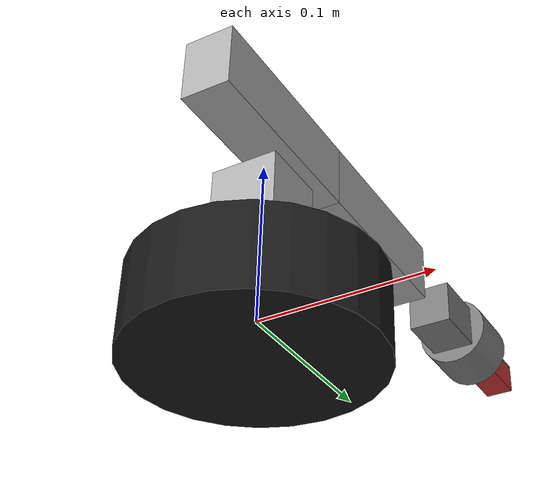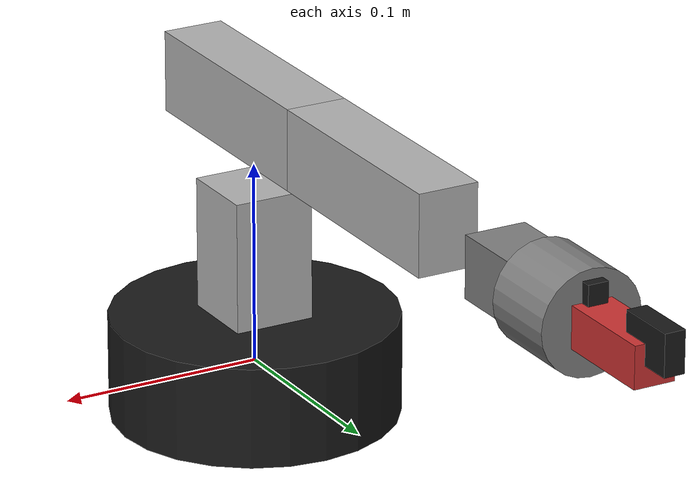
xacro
<?xml version="1.0"?>
<robot name="phantomx_reactor" xmlns:xacro="http://ros.org/wiki/xacro">

  <!-- Materials -->
  <material name="black">
    <color rgba="0.1 0.1 0.1 1.0"/>
  </material>
  <material name="gray">
    <color rgba="0.5 0.5 0.5 1.0"/>
  </material>
  <material name="silver">
    <color rgba="0.7 0.7 0.7 1.0"/>
  </material>
  <material name="red">
    <color rgba="0.8 0.2 0.2 1.0"/>
  </material>

  <!-- Base Link (fixed to world) -->
  <link name="base_link">
    <visual>
      <origin xyz="0 0 0" rpy="0 0 0"/>
      <geometry>
        <cylinder radius="0.07" length="0.05"/>
      </geometry>
      <material name="black"/>
    </visual>
    <collision>
      <origin xyz="0 0 0" rpy="0 0 0"/>
      <geometry>
        <cylinder radius="0.07" length="0.05"/>
      </geometry>
    </collision>
    <inertial>
      <origin xyz="0 0 0" rpy="0 0 0"/>
      <mass value="0.2"/>
      <inertia ixx="0.0005" ixy="0" ixz="0" iyy="0.0005" iyz="0" izz="0.001"/>
    </inertial>
  </link>

  <!-- Base Rotation Joint (Servo ID 1) -->
  <joint name="base_joint" type="revolute">
    <parent link="base_link"/>
    <child link="base_rot_link"/>
    <origin xyz="0 0 0.05" rpy="0 0 0"/>
    <axis xyz="0 0 1"/>
    <limit lower="-3.14" upper="3.14" effort="1.0" velocity="6.0"/>
    <dynamics damping="0.1" friction="0.1"/>
  </joint>

  <link name="base_rot_link">
    <visual>
      <origin xyz="0 0 0" rpy="0 0 0"/>
      <geometry>
        <box size="0.04 0.04 0.08"/>
      </geometry>
      <material name="silver"/>
    </visual>
    <collision>
      <origin xyz="0 0 0" rpy="0 0 0"/>
      <geometry>
        <box size="0.04 0.04 0.08"/>
      </geometry>
    </collision>
    <inertial>
      <origin xyz="0 0 0.04" rpy="0 0 0"/>
      <mass value="0.15"/>
      <inertia ixx="0.0003" ixy="0" ixz="0" iyy="0.0003" iyz="0" izz="0.0002"/>
    </inertial>
  </link>

  <!-- Shoulder Pitch Joint (Servo IDs 2 & 3 - dual) -->
  <joint name="shoulder_pitch_joint" type="revolute">
    <parent link="base_rot_link"/>
    <child link="shoulder_link"/>
    <origin xyz="0 0 0.08" rpy="0 0 0"/>
    <axis xyz="0 1 0"/>
    <limit lower="-1.57" upper="1.57" effort="2.0" velocity="6.0"/>
    <dynamics damping="0.1" friction="0.1"/>
  </joint>

  <link name="shoulder_link">
    <visual>
      <origin xyz="0 0 0" rpy="0 0 0"/>
      <geometry>
        <box size="0.03 0.12 0.04"/>
      </geometry>
      <material name="silver"/>
    </visual>
    <collision>
      <origin xyz="0 0 0" rpy="0 0 0"/>
      <geometry>
        <box size="0.03 0.12 0.04"/>
      </geometry>
    </collision>
    <inertial>
      <origin xyz="0 0.06 0" rpy="0 0 0"/>
      <mass value="0.2"/>
      <inertia ixx="0.0004" ixy="0" ixz="0" iyy="0.0002" iyz="0" izz="0.0004"/>
    </inertial>
  </link>

  <!-- Elbow Pitch Joint (Servo IDs 4 & 5 - dual) -->
  <joint name="elbow_pitch_joint" type="revolute">
    <parent link="shoulder_link"/>
    <child link="elbow_link"/>
    <origin xyz="0 0.12 0" rpy="0 0 0"/>
    <axis xyz="0 1 0"/>
    <limit lower="-1.57" upper="1.57" effort="2.0" velocity="6.0"/>
    <dynamics damping="0.1" friction="0.1"/>
  </joint>

  <link name="elbow_link">
    <visual>
      <origin xyz="0 0 0" rpy="0 0 0"/>
      <geometry>
        <box size="0.03 0.12 0.04"/>
      </geometry>
      <material name="silver"/>
    </visual>
    <collision>
      <origin xyz="0 0 0" rpy="0 0 0"/>
      <geometry>
        <box size="0.03 0.12 0.04"/>
      </geometry>
    </collision>
    <inertial>
      <origin xyz="0 0.06 0" rpy="0 0 0"/>
      <mass value="0.15"/>
      <inertia ixx="0.0003" ixy="0" ixz="0" iyy="0.0002" iyz="0" izz="0.0003"/>
    </inertial>
  </link>

  <!-- Wrist Pitch Joint (Servo ID 6) -->
  <joint name="wrist_pitch_joint" type="revolute">
    <parent link="elbow_link"/>
    <child link="wrist_pitch_link"/>
    <origin xyz="0 0.12 0" rpy="0 0 0"/>
    <axis xyz="0 1 0"/>
    <limit lower="-1.57" upper="1.57" effort="1.0" velocity="6.0"/>
    <dynamics damping="0.1" friction="0.1"/>
  </joint>

  <link name="wrist_pitch_link">
    <visual>
      <origin xyz="0 0 0" rpy="0 0 0"/>
      <geometry>
        <box size="0.03 0.04 0.03"/>
      </geometry>
      <material name="gray"/>
    </visual>
    <collision>
      <origin xyz="0 0 0" rpy="0 0 0"/>
      <geometry>
        <box size="0.03 0.04 0.03"/>
      </geometry>
    </collision>
    <inertial>
      <origin xyz="0 0.02 0" rpy="0 0 0"/>
      <mass value="0.1"/>
      <inertia ixx="0.0001" ixy="0" ixz="0" iyy="0.0001" iyz="0" izz="0.0001"/>
    </inertial>
  </link>

  <!-- Wrist Roll Joint (Servo ID 7) -->
  <joint name="wrist_roll_joint" type="revolute">
    <parent link="wrist_pitch_link"/>
    <child link="wrist_roll_link"/>
    <origin xyz="0 0.04 0" rpy="${-pi/2} 0 0"/>
    <axis xyz="0 0 1"/>
    <limit lower="-3.14" upper="3.14" effort="1.0" velocity="6.0"/>
    <dynamics damping="0.1" friction="0.1"/>
  </joint>

  <link name="wrist_roll_link">
    <visual>
      <origin xyz="0 0 0" rpy="0 0 0"/>
      <geometry>
        <cylinder radius="0.025" length="0.04"/>
      </geometry>
      <material name="gray"/>
    </visual>
    <collision>
      <origin xyz="0 0 0" rpy="0 0 0"/>
      <geometry>
        <cylinder radius="0.025" length="0.04"/>
      </geometry>
    </collision>
    <inertial>
      <origin xyz="0 0 0" rpy="0 0 0"/>
      <mass value="0.08"/>
      <inertia ixx="0.0001" ixy="0" ixz="0" iyy="0.0001" iyz="0" izz="0.0001"/>
    </inertial>
  </link>

  <!-- Gripper Joint (Servo ID 8) -->
  <joint name="gripper_joint" type="revolute">
    <parent link="wrist_roll_link"/>
    <child link="gripper_link"/>
    <origin xyz="0 0 0.04" rpy="${pi/2} 0 0"/>
    <axis xyz="0 0 1"/>
    <limit lower="-1.57" upper="1.57" effort="0.5" velocity="6.0"/>
    <dynamics damping="0.1" friction="0.1"/>
  </joint>

  <link name="gripper_link">
    <visual>
      <origin xyz="0 0 0" rpy="0 0 0"/>
      <geometry>
        <box size="0.02 0.06 0.02"/>
      </geometry>
      <material name="red"/>
    </visual>
    <collision>
      <origin xyz="0 0 0" rpy="0 0 0"/>
      <geometry>
        <box size="0.02 0.06 0.02"/>
      </geometry>
    </collision>
    <inertial>
      <origin xyz="0 0.03 0" rpy="0 0 0"/>
      <mass value="0.05"/>
      <inertia ixx="0.00005" ixy="0" ixz="0" iyy="0.00003" iyz="0" izz="0.00005"/>
    </inertial>
  </link>

  <!-- Gripper Finger Left (mimic joint) -->
  <joint name="gripper_left_joint" type="revolute">
    <parent link="gripper_link"/>
    <child link="gripper_left_finger"/>
    <origin xyz="0 0.03 0.01" rpy="0 0 0"/>
    <axis xyz="1 0 0"/>
    <limit lower="0" upper="0.5" effort="0.3" velocity="3.0"/>
    <mimic joint="gripper_joint" multiplier="1.0" offset="0.0"/>
  </joint>

  <link name="gripper_left_finger">
    <visual>
      <origin xyz="0 0 0" rpy="0 0 0"/>
      <geometry>
        <box size="0.01 0.03 0.02"/>
      </geometry>
      <material name="black"/>
    </visual>
    <collision>
      <origin xyz="0 0 0" rpy="0 0 0"/>
      <geometry>
        <box size="0.01 0.03 0.02"/>
      </geometry>
    </collision>
    <inertial>
      <origin xyz="0 0.015 0" rpy="0 0 0"/>
      <mass value="0.02"/>
      <inertia ixx="0.00001" ixy="0" ixz="0" iyy="0.00001" iyz="0" izz="0.00001"/>
    </inertial>
  </link>

  <!-- Gripper Finger Right (mimic joint) -->
  <joint name="gripper_right_joint" type="revolute">
    <parent link="gripper_link"/>
    <child link="gripper_right_finger"/>
    <origin xyz="0 -0.03 0.01" rpy="0 0 0"/>
    <axis xyz="1 0 0"/>
    <limit lower="-0.5" upper="0" effort="0.3" velocity="3.0"/>
    <mimic joint="gripper_joint" multiplier="-1.0" offset="0.0"/>
  </joint>

  <link name="gripper_right_finger">
    <visual>
      <origin xyz="0 0 0" rpy="0 0 0"/>
      <geometry>
        <box size="0.01 0.03 0.02"/>
      </geometry>
      <material name="black"/>
    </visual>
    <collision>
      <origin xyz="0 0 0" rpy="0 0 0"/>
      <geometry>
        <box size="0.01 0.03 0.02"/>
      </geometry>
    </collision>
    <inertial>
      <origin xyz="0 -0.015 0" rpy="0 0 0"/>
      <mass value="0.02"/>
      <inertia ixx="0.00001" ixy="0" ixz="0" iyy="0.00001" iyz="0" izz="0.00001"/>
    </inertial>
  </link>

  <!-- World Fixed Joint -->
  <link name="world"/>
  <joint name="world_fixed" type="fixed">
    <parent link="world"/>
    <child link="base_link"/>
    <origin xyz="0 0 0" rpy="0 0 0"/>
  </joint>

</robot>
